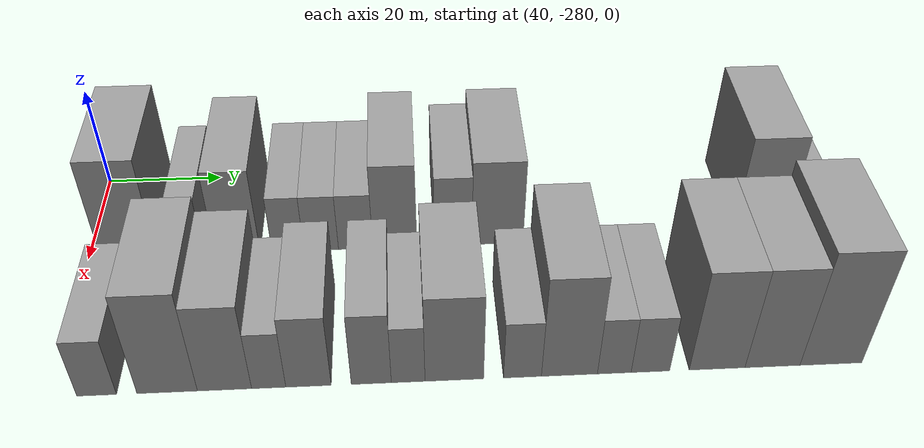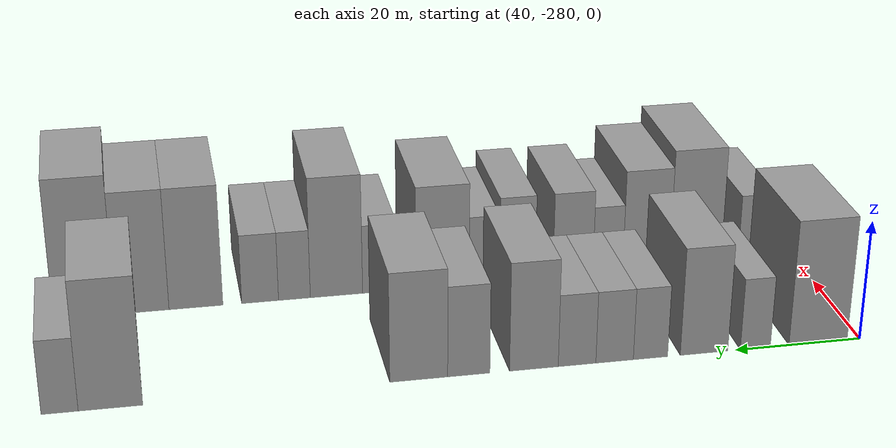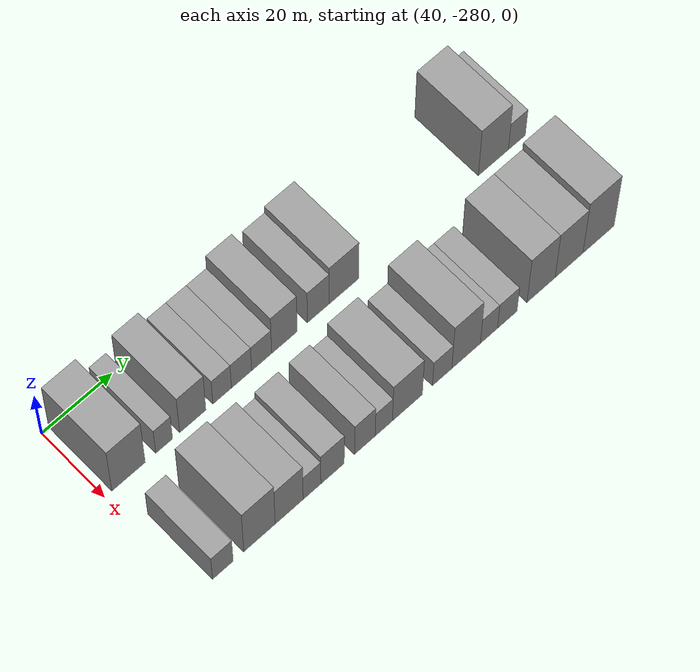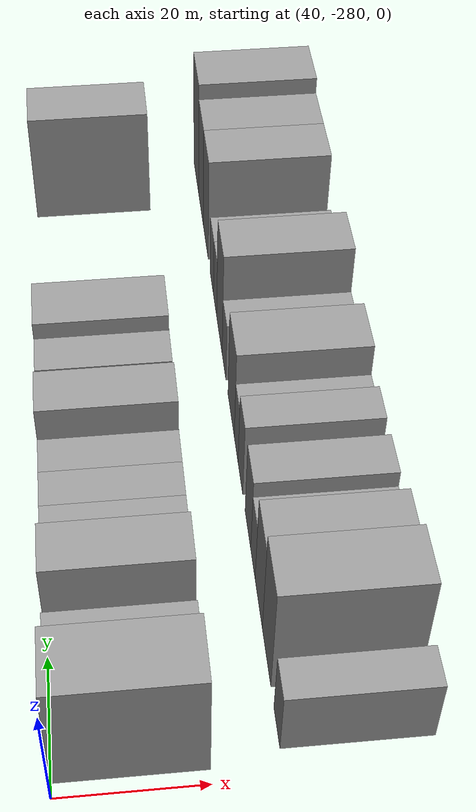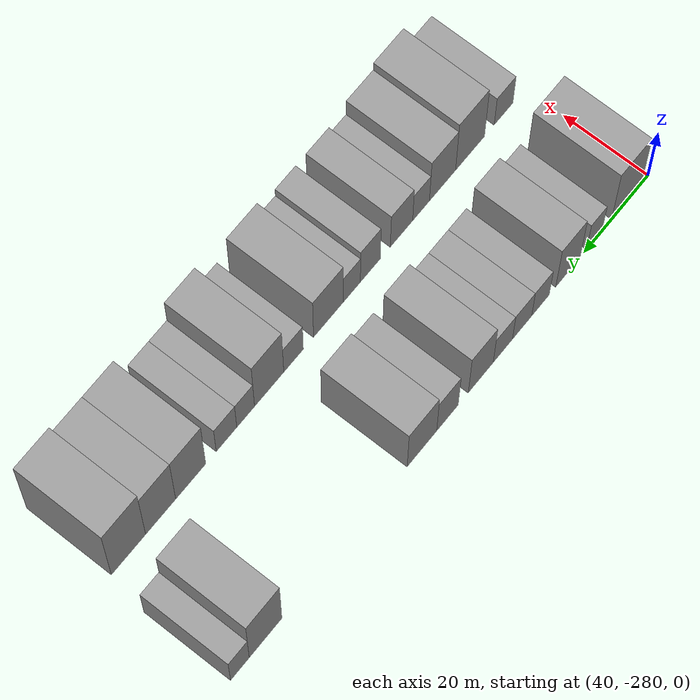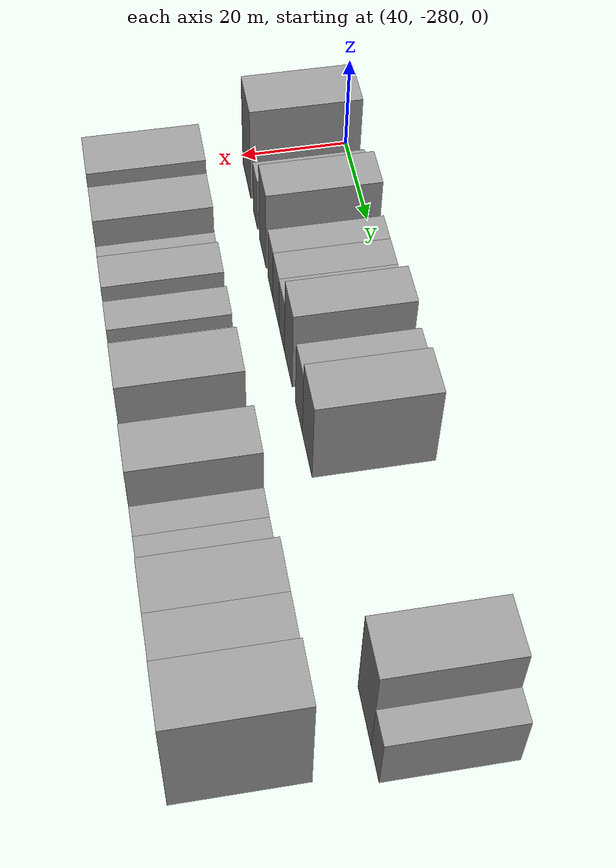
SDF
<sdf version="1.6">
 <world name="default">
  <model name="building_1">
   <static>1</static>
   <pose>50.0000 -273.2894 0 0.000000 0.000000 0.000000</pose>
   <link name="link">
    <pose>0 0 10.50 0 0 0</pose>
    <collision name="collision"><geometry><box><size>20.0000 9.4211 21.0000</size></box></geometry></collision>
    <visual name="visual">
     <cast_shadows>0</cast_shadows>
     <geometry><box><size>20.0000 9.4211 21.0000</size></box></geometry>
     <material>
      <script>
       <uri>model://grey_wall/materials/scripts</uri>
       <uri>model://grey_wall/materials/textures</uri>
       <name>vrc/grey_wall</name>
      </script>
     </material>
    </visual>
   </link>
  </model>
  <model name="building_2">
   <static>1</static>
   <pose>50.0000 -263.1731 0 0.000000 0.000000 0.000000</pose>
   <link name="link">
    <pose>0 0 6.00 0 0 0</pose>
    <collision name="collision"><geometry><box><size>20.0000 4.8114 12.0000</size></box></geometry></collision>
    <visual name="visual">
     <cast_shadows>0</cast_shadows>
     <geometry><box><size>20.0000 4.8114 12.0000</size></box></geometry>
     <material>
      <script>
       <uri>model://grey_wall/materials/scripts</uri>
       <uri>model://grey_wall/materials/textures</uri>
       <name>vrc/grey_wall</name>
      </script>
     </material>
    </visual>
   </link>
  </model>
  <model name="building_3">
   <static>1</static>
   <pose>50.0000 -254.9956 0 0.000000 0.000000 0.000000</pose>
   <link name="link">
    <pose>0 0 9.00 0 0 0</pose>
    <collision name="collision"><geometry><box><size>20.0000 7.5438 18.0000</size></box></geometry></collision>
    <visual name="visual">
     <cast_shadows>0</cast_shadows>
     <geometry><box><size>20.0000 7.5438 18.0000</size></box></geometry>
     <material>
      <script>
       <uri>model://grey_wall/materials/scripts</uri>
       <uri>model://grey_wall/materials/textures</uri>
       <name>vrc/grey_wall</name>
      </script>
     </material>
    </visual>
   </link>
  </model>
  <model name="building_4">
   <static>1</static>
   <pose>50.0000 -246.5318 0 0.000000 0.000000 0.000000</pose>
   <link name="link">
    <pose>0 0 6.00 0 0 0</pose>
    <collision name="collision"><geometry><box><size>20.0000 5.3838 12.0000</size></box></geometry></collision>
    <visual name="visual">
     <cast_shadows>0</cast_shadows>
     <geometry><box><size>20.0000 5.3838 12.0000</size></box></geometry>
     <material>
      <script>
       <uri>model://grey_wall/materials/scripts</uri>
       <uri>model://grey_wall/materials/textures</uri>
       <name>vrc/grey_wall</name>
      </script>
     </material>
    </visual>
   </link>
  </model>
  <model name="building_5">
   <static>1</static>
   <pose>50.0000 -240.9137 0 0.000000 0.000000 0.000000</pose>
   <link name="link">
    <pose>0 0 6.00 0 0 0</pose>
    <collision name="collision"><geometry><box><size>20.0000 5.8524 12.0000</size></box></geometry></collision>
    <visual name="visual">
     <cast_shadows>0</cast_shadows>
     <geometry><box><size>20.0000 5.8524 12.0000</size></box></geometry>
     <material>
      <script>
       <uri>model://grey_wall/materials/scripts</uri>
       <uri>model://grey_wall/materials/textures</uri>
       <name>vrc/grey_wall</name>
      </script>
     </material>
    </visual>
   </link>
  </model>
  <model name="building_6">
   <static>1</static>
   <pose>50.0000 -235.0717 0 0.000000 0.000000 0.000000</pose>
   <link name="link">
    <pose>0 0 6.00 0 0 0</pose>
    <collision name="collision"><geometry><box><size>20.0000 5.8316 12.0000</size></box></geometry></collision>
    <visual name="visual">
     <cast_shadows>0</cast_shadows>
     <geometry><box><size>20.0000 5.8316 12.0000</size></box></geometry>
     <material>
      <script>
       <uri>model://grey_wall/materials/scripts</uri>
       <uri>model://grey_wall/materials/textures</uri>
       <name>vrc/grey_wall</name>
      </script>
     </material>
    </visual>
   </link>
  </model>
  <model name="building_7">
   <static>1</static>
   <pose>50.0000 -228.4063 0 0.000000 0.000000 0.000000</pose>
   <link name="link">
    <pose>0 0 9.00 0 0 0</pose>
    <collision name="collision"><geometry><box><size>20.0000 7.4994 18.0000</size></box></geometry></collision>
    <visual name="visual">
     <cast_shadows>0</cast_shadows>
     <geometry><box><size>20.0000 7.4994 18.0000</size></box></geometry>
     <material>
      <script>
       <uri>model://grey_wall/materials/scripts</uri>
       <uri>model://grey_wall/materials/textures</uri>
       <name>vrc/grey_wall</name>
      </script>
     </material>
    </visual>
   </link>
  </model>
  <model name="building_8">
   <static>1</static>
   <pose>50.0000 -218.4468 0 0.000000 0.000000 0.000000</pose>
   <link name="link">
    <pose>0 0 7.50 0 0 0</pose>
    <collision name="collision"><geometry><box><size>20.0000 6.4194 15.0000</size></box></geometry></collision>
    <visual name="visual">
     <cast_shadows>0</cast_shadows>
     <geometry><box><size>20.0000 6.4194 15.0000</size></box></geometry>
     <material>
      <script>
       <uri>model://grey_wall/materials/scripts</uri>
       <uri>model://grey_wall/materials/textures</uri>
       <name>vrc/grey_wall</name>
      </script>
     </material>
    </visual>
   </link>
  </model>
  <model name="building_9">
   <static>1</static>
   <pose>50.0000 -210.8716 0 0.000000 0.000000 0.000000</pose>
   <link name="link">
    <pose>0 0 9.00 0 0 0</pose>
    <collision name="collision"><geometry><box><size>20.0000 8.7310 18.0000</size></box></geometry></collision>
    <visual name="visual">
     <cast_shadows>0</cast_shadows>
     <geometry><box><size>20.0000 8.7310 18.0000</size></box></geometry>
     <material>
      <script>
       <uri>model://grey_wall/materials/scripts</uri>
       <uri>model://grey_wall/materials/textures</uri>
       <name>vrc/grey_wall</name>
      </script>
     </material>
    </visual>
   </link>
  </model>
  <model name="building_10">
   <static>1</static>
   <pose>50.0000 -165.6635 0 0.000000 0.000000 0.000000</pose>
   <link name="link">
    <pose>0 0 10.50 0 0 0</pose>
    <collision name="collision"><geometry><box><size>20.0000 9.2284 21.0000</size></box></geometry></collision>
    <visual name="visual">
     <cast_shadows>0</cast_shadows>
     <geometry><box><size>20.0000 9.2284 21.0000</size></box></geometry>
     <material>
      <script>
       <uri>model://grey_wall/materials/scripts</uri>
       <uri>model://grey_wall/materials/textures</uri>
       <name>vrc/grey_wall</name>
      </script>
     </material>
    </visual>
   </link>
  </model>
  <model name="building_11">
   <static>1</static>
   <pose>50.0000 -158.4213 0 0.000000 0.000000 0.000000</pose>
   <link name="link">
    <pose>0 0 6.00 0 0 0</pose>
    <collision name="collision"><geometry><box><size>20.0000 5.2560 12.0000</size></box></geometry></collision>
    <visual name="visual">
     <cast_shadows>0</cast_shadows>
     <geometry><box><size>20.0000 5.2560 12.0000</size></box></geometry>
     <material>
      <script>
       <uri>model://grey_wall/materials/scripts</uri>
       <uri>model://grey_wall/materials/textures</uri>
       <name>vrc/grey_wall</name>
      </script>
     </material>
    </visual>
   </link>
  </model>
  <model name="building_47">
   <static>1</static>
   <pose>79.0000 -273.0816 0 0.000000 0.000000 0.000000</pose>
   <link name="link">
    <pose>0 0 6.00 0 0 0</pose>
    <collision name="collision"><geometry><box><size>20.0000 5.8367 12.0000</size></box></geometry></collision>
    <visual name="visual">
     <cast_shadows>0</cast_shadows>
     <geometry><box><size>20.0000 5.8367 12.0000</size></box></geometry>
     <material>
      <script>
       <uri>model://grey_wall/materials/scripts</uri>
       <uri>model://grey_wall/materials/textures</uri>
       <name>vrc/grey_wall</name>
      </script>
     </material>
    </visual>
   </link>
  </model>
  <model name="building_48">
   <static>1</static>
   <pose>79.0000 -262.6947 0 0.000000 0.000000 0.000000</pose>
   <link name="link">
    <pose>0 0 10.50 0 0 0</pose>
    <collision name="collision"><geometry><box><size>20.0000 8.9372 21.0000</size></box></geometry></collision>
    <visual name="visual">
     <cast_shadows>0</cast_shadows>
     <geometry><box><size>20.0000 8.9372 21.0000</size></box></geometry>
     <material>
      <script>
       <uri>model://grey_wall/materials/scripts</uri>
       <uri>model://grey_wall/materials/textures</uri>
       <name>vrc/grey_wall</name>
      </script>
     </material>
    </visual>
   </link>
  </model>
  <model name="building_49">
   <static>1</static>
   <pose>79.0000 -254.2086 0 0.000000 0.000000 0.000000</pose>
   <link name="link">
    <pose>0 0 9.00 0 0 0</pose>
    <collision name="collision"><geometry><box><size>20.0000 8.0350 18.0000</size></box></geometry></collision>
    <visual name="visual">
     <cast_shadows>0</cast_shadows>
     <geometry><box><size>20.0000 8.0350 18.0000</size></box></geometry>
     <material>
      <script>
       <uri>model://grey_wall/materials/scripts</uri>
       <uri>model://grey_wall/materials/textures</uri>
       <name>vrc/grey_wall</name>
      </script>
     </material>
    </visual>
   </link>
  </model>
  <model name="building_50">
   <static>1</static>
   <pose>79.0000 -247.6454 0 0.000000 0.000000 0.000000</pose>
   <link name="link">
    <pose>0 0 6.00 0 0 0</pose>
    <collision name="collision"><geometry><box><size>20.0000 5.0915 12.0000</size></box></geometry></collision>
    <visual name="visual">
     <cast_shadows>0</cast_shadows>
     <geometry><box><size>20.0000 5.0915 12.0000</size></box></geometry>
     <material>
      <script>
       <uri>model://grey_wall/materials/scripts</uri>
       <uri>model://grey_wall/materials/textures</uri>
       <name>vrc/grey_wall</name>
      </script>
     </material>
    </visual>
   </link>
  </model>
  <model name="building_51">
   <static>1</static>
   <pose>79.0000 -241.7153 0 0.000000 0.000000 0.000000</pose>
   <link name="link">
    <pose>0 0 7.50 0 0 0</pose>
    <collision name="collision"><geometry><box><size>20.0000 6.7688 15.0000</size></box></geometry></collision>
    <visual name="visual">
     <cast_shadows>0</cast_shadows>
     <geometry><box><size>20.0000 6.7688 15.0000</size></box></geometry>
     <material>
      <script>
       <uri>model://grey_wall/materials/scripts</uri>
       <uri>model://grey_wall/materials/textures</uri>
       <name>vrc/grey_wall</name>
      </script>
     </material>
    </visual>
   </link>
  </model>
  <model name="building_52">
   <static>1</static>
   <pose>79.0000 -232.3293 0 0.000000 0.000000 0.000000</pose>
   <link name="link">
    <pose>0 0 7.50 0 0 0</pose>
    <collision name="collision"><geometry><box><size>20.0000 6.0031 15.0000</size></box></geometry></collision>
    <visual name="visual">
     <cast_shadows>0</cast_shadows>
     <geometry><box><size>20.0000 6.0031 15.0000</size></box></geometry>
     <material>
      <script>
       <uri>model://grey_wall/materials/scripts</uri>
       <uri>model://grey_wall/materials/textures</uri>
       <name>vrc/grey_wall</name>
      </script>
     </material>
    </visual>
   </link>
  </model>
  <model name="building_53">
   <static>1</static>
   <pose>79.0000 -226.7946 0 0.000000 0.000000 0.000000</pose>
   <link name="link">
    <pose>0 0 6.00 0 0 0</pose>
    <collision name="collision"><geometry><box><size>20.0000 5.0664 12.0000</size></box></geometry></collision>
    <visual name="visual">
     <cast_shadows>0</cast_shadows>
     <geometry><box><size>20.0000 5.0664 12.0000</size></box></geometry>
     <material>
      <script>
       <uri>model://grey_wall/materials/scripts</uri>
       <uri>model://grey_wall/materials/textures</uri>
       <name>vrc/grey_wall</name>
      </script>
     </material>
    </visual>
   </link>
  </model>
  <model name="building_54">
   <static>1</static>
   <pose>79.0000 -219.8403 0 0.000000 0.000000 0.000000</pose>
   <link name="link">
    <pose>0 0 9.00 0 0 0</pose>
    <collision name="collision"><geometry><box><size>20.0000 8.8422 18.0000</size></box></geometry></collision>
    <visual name="visual">
     <cast_shadows>0</cast_shadows>
     <geometry><box><size>20.0000 8.8422 18.0000</size></box></geometry>
     <material>
      <script>
       <uri>model://grey_wall/materials/scripts</uri>
       <uri>model://grey_wall/materials/textures</uri>
       <name>vrc/grey_wall</name>
      </script>
     </material>
    </visual>
   </link>
  </model>
  <model name="building_55">
   <static>1</static>
   <pose>79.0000 -209.5473 0 0.000000 0.000000 0.000000</pose>
   <link name="link">
    <pose>0 0 6.00 0 0 0</pose>
    <collision name="collision"><geometry><box><size>20.0000 5.7439 12.0000</size></box></geometry></collision>
    <visual name="visual">
     <cast_shadows>0</cast_shadows>
     <geometry><box><size>20.0000 5.7439 12.0000</size></box></geometry>
     <material>
      <script>
       <uri>model://grey_wall/materials/scripts</uri>
       <uri>model://grey_wall/materials/textures</uri>
       <name>vrc/grey_wall</name>
      </script>
     </material>
    </visual>
   </link>
  </model>
  <model name="building_56">
   <static>1</static>
   <pose>79.0000 -202.4162 0 0.000000 0.000000 0.000000</pose>
   <link name="link">
    <pose>0 0 10.50 0 0 0</pose>
    <collision name="collision"><geometry><box><size>20.0000 8.5183 21.0000</size></box></geometry></collision>
    <visual name="visual">
     <cast_shadows>0</cast_shadows>
     <geometry><box><size>20.0000 8.5183 21.0000</size></box></geometry>
     <material>
      <script>
       <uri>model://grey_wall/materials/scripts</uri>
       <uri>model://grey_wall/materials/textures</uri>
       <name>vrc/grey_wall</name>
      </script>
     </material>
    </visual>
   </link>
  </model>
  <model name="building_57">
   <static>1</static>
   <pose>79.0000 -195.5853 0 0.000000 0.000000 0.000000</pose>
   <link name="link">
    <pose>0 0 6.00 0 0 0</pose>
    <collision name="collision"><geometry><box><size>20.0000 5.1434 12.0000</size></box></geometry></collision>
    <visual name="visual">
     <cast_shadows>0</cast_shadows>
     <geometry><box><size>20.0000 5.1434 12.0000</size></box></geometry>
     <material>
      <script>
       <uri>model://grey_wall/materials/scripts</uri>
       <uri>model://grey_wall/materials/textures</uri>
       <name>vrc/grey_wall</name>
      </script>
     </material>
    </visual>
   </link>
  </model>
  <model name="building_58">
   <static>1</static>
   <pose>79.0000 -190.0571 0 0.000000 0.000000 0.000000</pose>
   <link name="link">
    <pose>0 0 6.00 0 0 0</pose>
    <collision name="collision"><geometry><box><size>20.0000 5.9130 12.0000</size></box></geometry></collision>
    <visual name="visual">
     <cast_shadows>0</cast_shadows>
     <geometry><box><size>20.0000 5.9130 12.0000</size></box></geometry>
     <material>
      <script>
       <uri>model://grey_wall/materials/scripts</uri>
       <uri>model://grey_wall/materials/textures</uri>
       <name>vrc/grey_wall</name>
      </script>
     </material>
    </visual>
   </link>
  </model>
  <model name="building_59">
   <static>1</static>
   <pose>79.0000 -179.8180 0 0.000000 0.000000 0.000000</pose>
   <link name="link">
    <pose>0 0 10.50 0 0 0</pose>
    <collision name="collision"><geometry><box><size>20.0000 8.5653 21.0000</size></box></geometry></collision>
    <visual name="visual">
     <cast_shadows>0</cast_shadows>
     <geometry><box><size>20.0000 8.5653 21.0000</size></box></geometry>
     <material>
      <script>
       <uri>model://grey_wall/materials/scripts</uri>
       <uri>model://grey_wall/materials/textures</uri>
       <name>vrc/grey_wall</name>
      </script>
     </material>
    </visual>
   </link>
  </model>
  <model name="building_60">
   <static>1</static>
   <pose>79.0000 -171.2874 0 0.000000 0.000000 0.000000</pose>
   <link name="link">
    <pose>0 0 10.50 0 0 0</pose>
    <collision name="collision"><geometry><box><size>20.0000 8.4959 21.0000</size></box></geometry></collision>
    <visual name="visual">
     <cast_shadows>0</cast_shadows>
     <geometry><box><size>20.0000 8.4959 21.0000</size></box></geometry>
     <material>
      <script>
       <uri>model://grey_wall/materials/scripts</uri>
       <uri>model://grey_wall/materials/textures</uri>
       <name>vrc/grey_wall</name>
      </script>
     </material>
    </visual>
   </link>
  </model>
  <model name="building_61">
   <static>1</static>
   <pose>79.0000 -162.2312 0 0.000000 0.000000 0.000000</pose>
   <link name="link">
    <pose>0 0 12.00 0 0 0</pose>
    <collision name="collision"><geometry><box><size>20.0000 9.6166 24.0000</size></box></geometry></collision>
    <visual name="visual">
     <cast_shadows>0</cast_shadows>
     <geometry><box><size>20.0000 9.6166 24.0000</size></box></geometry>
     <material>
      <script>
       <uri>model://grey_wall/materials/scripts</uri>
       <uri>model://grey_wall/materials/textures</uri>
       <name>vrc/grey_wall</name>
      </script>
     </material>
    </visual>
   </link>
  </model>
 </world>
</sdf>
